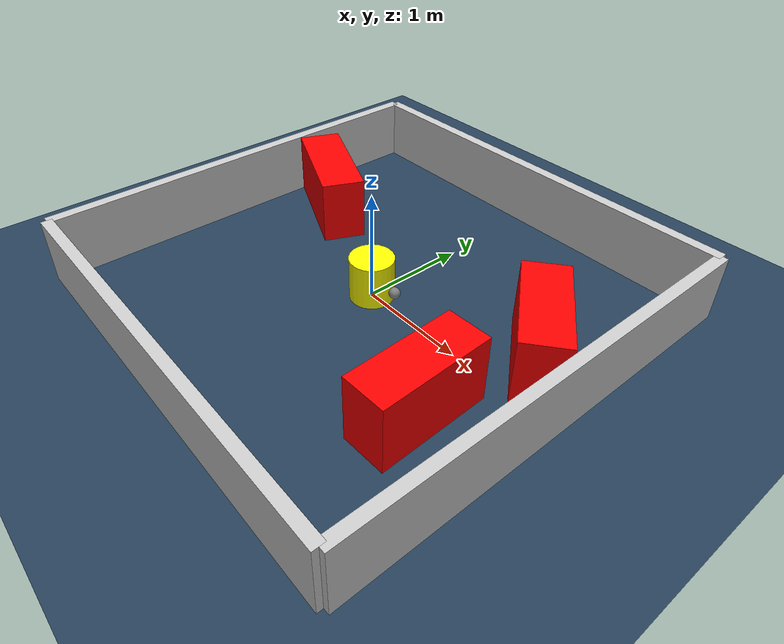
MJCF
<?xml version="1.0" ?>
<mujoco model="generated_environment">
  <option timestep="0.01" integrator="RK4" cone="elliptic"/>
  <default>
    <geom density="1"/>
  </default>
  <asset>
    <texture builtin="gradient" height="3072" rgb1="0.3 0.5 0.7" rgb2="0 0 0" type="skybox" width="512"/>
    <texture builtin="checker" height="300" mark="edge" markrgb="0.8 0.8 0.8" name="groundplane" rgb1="0.2 0.3 0.4" rgb2="0.1 0.2 0.3" type="2d" width="300"/>
    <material name="groundplane" reflectance="0.2" texrepeat="5 5" texture="groundplane" texuniform="true"/>
    <material name="robot" rgba="0.0 1.0 0.0 1"/>
  </asset>
  <worldbody>
    <light dir="0 0 -1" directional="true" pos="0 0 1.5"/>
    <geom condim="4" friction="1.0 0.005 0.001" material="groundplane" name="floor" size="0 0 0.05" type="plane"/>
    <body name="walls">
      <geom name="wall_1" condim="4" pos="-2.0 0.0 0.3" rgba="0.800000011920929 0.800000011920929 0.800000011920929 1.0" size="0.05 2.0 0.3" type="box"/>
      <geom name="wall_2" condim="4" pos="2.0 0.0 0.3" rgba="0.800000011920929 0.800000011920929 0.800000011920929 1.0" size="0.05 2.0 0.3" type="box"/>
      <geom name="wall_3" condim="4" pos="0.0 -2.0 0.3" rgba="0.800000011920929 0.800000011920929 0.800000011920929 1.0" size="2.0 0.05 0.3" type="box"/>
      <geom name="wall_4" condim="4" pos="0.0 2.0 0.3" rgba="0.800000011920929 0.800000011920929 0.800000011920929 1.0" size="2.0 0.05 0.3" type="box"/>
    </body>
    <body name="robot">
      <joint name="joint_x" type="slide" pos="0 0 0" axis="1 0 0"/>
      <joint name="joint_y" type="slide" pos="0 0 0" axis="0 1 0"/>
      <geom name="robot" type="sphere" pos="0.3 0.0 0.2" size="0.05" mass="5." friction="1.0 0.005 0.0001" condim="4" rgba="0.5 0.5 0.5 1.0"/>
      <site name="sensor_ball"/>
    </body>
    <body name="obstacle_movable_1">
      <geom name="obstacle_movable_1" condim="4" pos="0.0 0.0 0.2" euler="0 0 0.0" friction="1.0 0.005 0.001" rgba="1.0 1.0 0.0 1.0" size="0.2 0.2 0.0" type="cylinder" mass="0.1"/>
      <joint type="free"/>
    </body>
    <body name="obstacle_2_static">
      <geom name="obstacle_2_static" condim="4" pos="-1.3642456051600442 0.5943877512792135 0.3" euler="0 0 155.84873860910085" friction="1.0 0.005 0.001" rgba="1 0 0 1" size="0.5413945188098883 0.2 0.3" type="box"/>
    </body>
    <body name="obstacle_3_static">
      <geom name="obstacle_3_static" condim="4" pos="1.4689734923823936 0.4591615609293733 0.3" euler="0 0 309.07827644191116" friction="1.0 0.005 0.001" rgba="1 0 0 1" size="0.4935034747226803 0.2 0.3" type="box"/>
    </body>
    <body name="obstacle_4_static">
      <geom name="obstacle_4_static" condim="4" pos="1.2978662243902461 -0.6624636552607313 0.3" euler="0 0 92.0416606971003" friction="1.0 0.005 0.001" rgba="1 0 0 1" size="0.5073399015089184 0.2 0.3" type="box"/>
    </body>
  </worldbody>
  <actuator>
    <motor name="actuator_x" joint="joint_x" gear="1" ctrlrange="-1 1"/>
    <motor name="actuator_y" joint="joint_y" gear="1" ctrlrange="-1 1"/>
  </actuator>
</mujoco>
